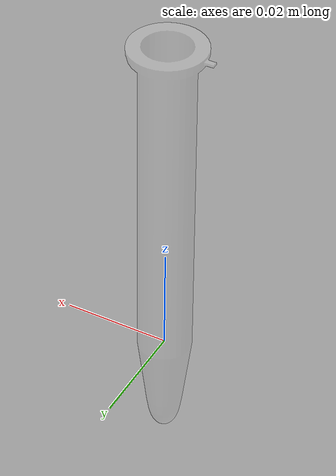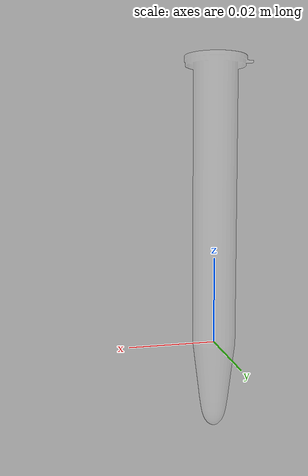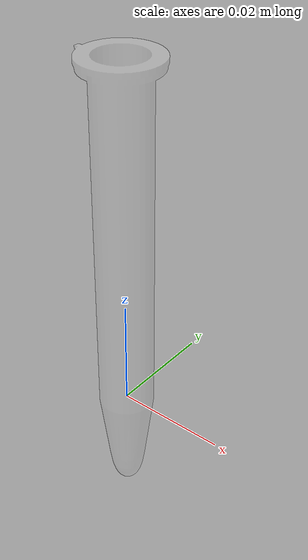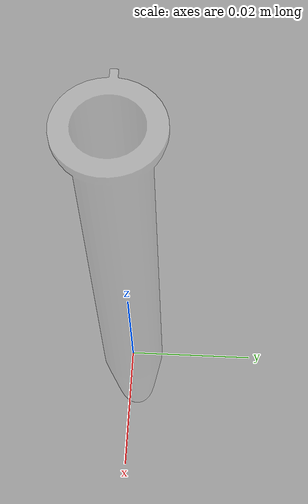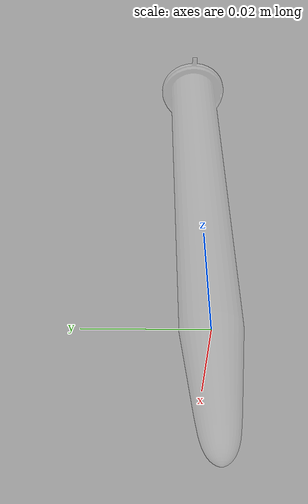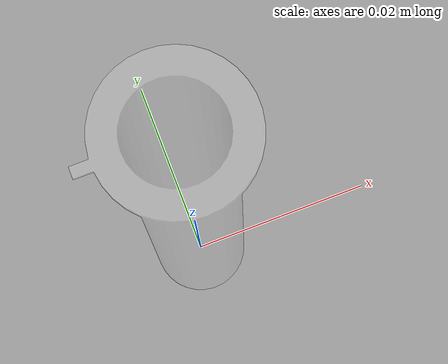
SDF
<?xml version='1.0'?>
<sdf version='1.6'>
  <model name='Shiguan_urdf'>
    <link name='base_link'>
      <pose frame=''>0 0 0 -0 -0 -0</pose>
      <inertial>
        <mass>0.01</mass>
        <inertia>
          <ixx>1e-05</ixx>
          <ixy>0</ixy>
          <ixz>0</ixz>
          <iyy>1e-05</iyy>
          <iyz>0</iyz>
          <izz>1e-05</izz>
        </inertia>
        <pose frame=''>0 0 0 0 -0 0</pose>
      </inertial>
      <self_collide>0</self_collide>
      <enable_wind>0</enable_wind>
      <kinematic>0</kinematic>
      <visual name='base_link_visual'>
        <pose frame=''>0 0 0 0 -0 0</pose>
        <geometry>
          <mesh>
            <scale>1 1 1</scale>
            <uri>/home/zhitao/diskE/Project/homework9_summation/hw34_yaogao_ws/src/models/Shiguan_urdf/meshes/base_link.STL</uri>
          </mesh>
        </geometry>
        <material>
          <ambient>0.9 0.9 0.9 0.2</ambient>
          <diffuse>0.9 0.9 0.9 0.2</diffuse>
          <specular>0 0 0 1</specular>
          <emissive>0 0 0 1</emissive>
        </material>
        <transparency>0</transparency>
        <cast_shadows>1</cast_shadows>
      </visual>
      <collision name='base_link_collision'>
        <laser_retro>0</laser_retro>
        <max_contacts>10</max_contacts>
        <pose frame=''>0 0 0 0 -0 0</pose>
        <geometry>
          <box>
            <size>0.005 0.005 0.04</size>
          </box>
        </geometry>
        <surface>
          <friction>
            <ode>
              <mu>1</mu>
              <mu2>1</mu2>
              <fdir1>0 0 0</fdir1>
              <slip1>0</slip1>
              <slip2>0</slip2>
            </ode>
            <torsional>
              <coefficient>1</coefficient>
              <patch_radius>0</patch_radius>
              <surface_radius>0</surface_radius>
              <use_patch_radius>1</use_patch_radius>
              <ode>
                <slip>0</slip>
              </ode>
            </torsional>
          </friction>
          <bounce>
            <restitution_coefficient>0</restitution_coefficient>
            <threshold>1e+06</threshold>
          </bounce>
          <contact>
            <collide_without_contact>0</collide_without_contact>
            <collide_without_contact_bitmask>1</collide_without_contact_bitmask>
            <collide_bitmask>1</collide_bitmask>
            <ode>
              <soft_cfm>0</soft_cfm>
              <soft_erp>0.2</soft_erp>
              <kp>1e+13</kp>
              <kd>1</kd>
              <max_vel>0.01</max_vel>
              <min_depth>0</min_depth>
            </ode>
            <bullet>
              <split_impulse>1</split_impulse>
              <split_impulse_penetration_threshold>-0.01</split_impulse_penetration_threshold>
              <soft_cfm>0</soft_cfm>
              <soft_erp>0.2</soft_erp>
              <kp>1e+13</kp>
              <kd>1</kd>
            </bullet>
          </contact>
        </surface>
      </collision>
    </link>
    <static>0</static>
    <allow_auto_disable>1</allow_auto_disable>
  </model>
</sdf>
